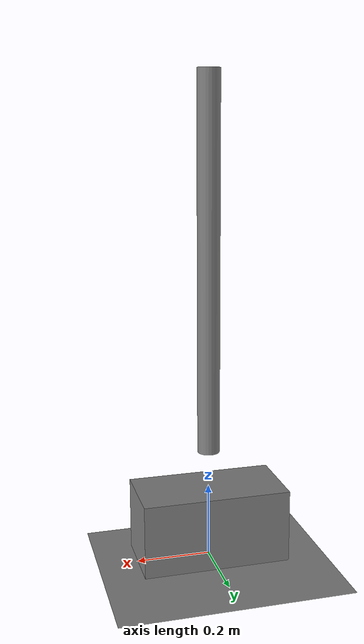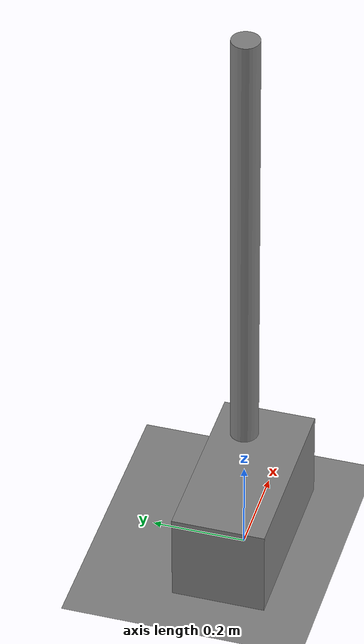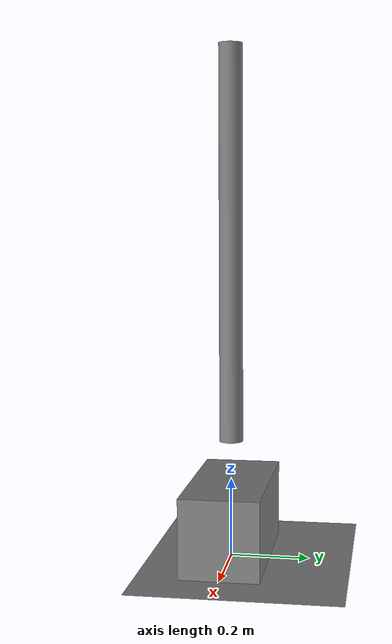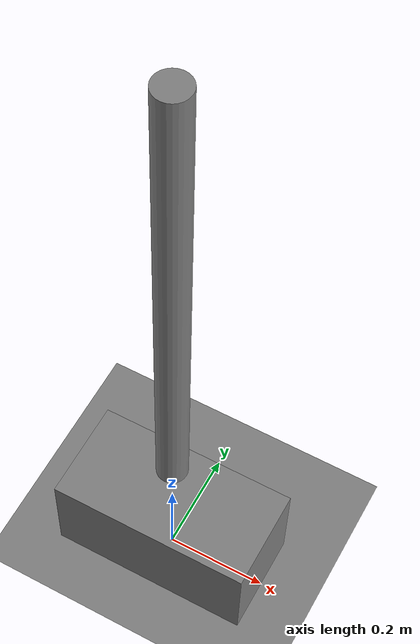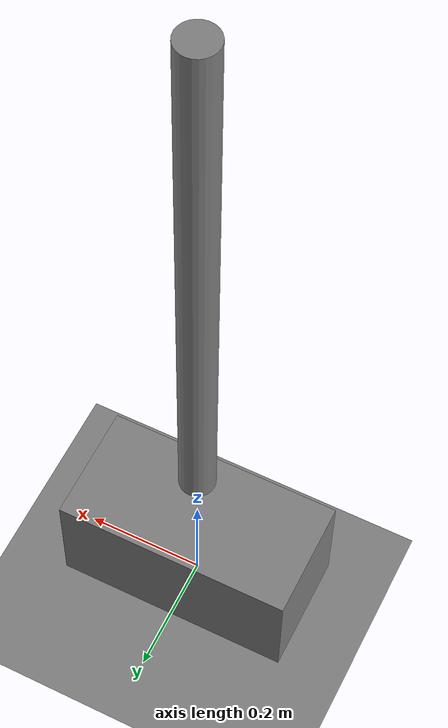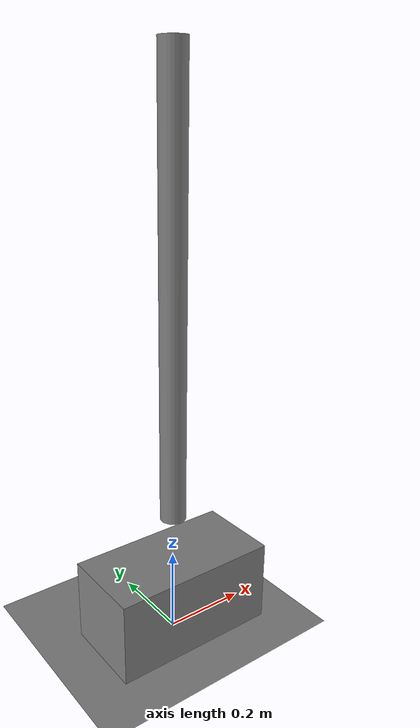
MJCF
<mujoco model="cartpole">
  <compiler angle="radian"/>
  <option timestep="0.02" integrator="RK4"/>

  <worldbody>
    <geom name="track" type="plane" size="2 0.5 0.01" rgba="0.5 0.5 0.5 1"/>
    <body name="cart" pos="0 0 0.1">
      <geom name="cart_geom" type="box" size="0.2 0.1 0.1" mass="5"/>
      <joint name="cart_x" type="slide" axis="1 0 0" range="-3 3" damping="0.1"/>
      <body name="pole" pos="0 0 0.2">
        <geom name="pole_geom" type="cylinder" size="0.03 0.5" pos="0 0 0.5" mass="1"/>
        <joint name="pole_hinge" type="hinge" axis="0 1 0" damping="0.1"/>
      </body>
    </body>
  </worldbody>

  <actuator>
    <motor name="cart_motor" joint="cart_x" gear="50" ctrlrange="-1 1"/>
  </actuator>
</mujoco>
